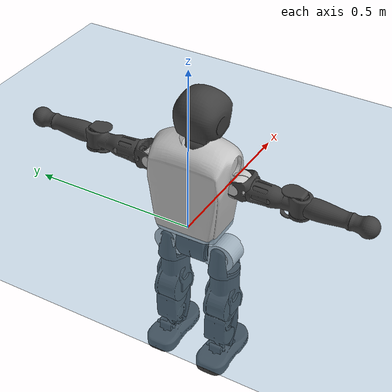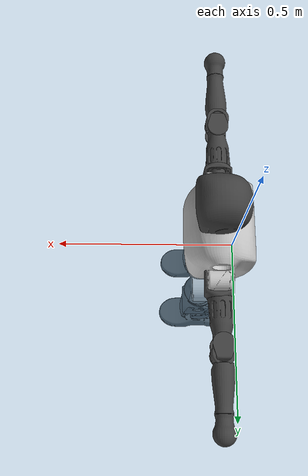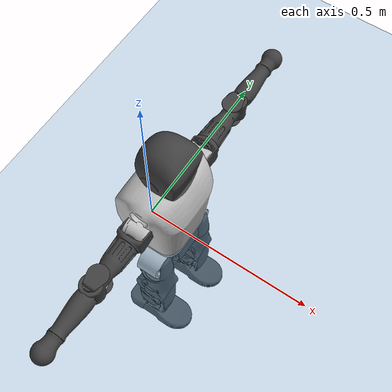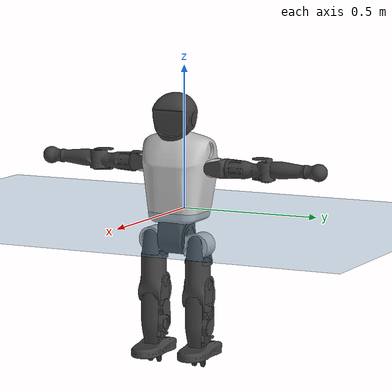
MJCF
<mujoco model="T1">
  <compiler angle="radian" assetdir="assets" balanceinertia="true" inertiafromgeom="false"/>

  <option timestep="0.005" density="1.2" viscosity="2e-05"/>

  <size nkey="1"/>

  <visual>
    <quality shadowsize="8192"/>
    <map shadowclip="0.5"/>
  </visual>

  <default>
    <default class="/">
      <joint armature="0.01" damping="0.01" frictionloss="0.1"/>
      <geom contype="0" conaffinity="0" group="1" solref="-1000 -80"/>
      <site size="0.01 0.005 0.005" group="5"/>
      <general forcelimited="true" biastype="affine" gainprm="25" biasprm="0 -25 -0.6"/>
      <default class="t1">
        <geom rgba="0.25 0.25 0.25 1"/>
        <default class="visual">
          <geom type="mesh" group="2"/>
        </default>
        <default class="collision">
          <geom group="3"/>
        </default>
        <default class="foot">
          <geom size="0.1115 0.05 0.015" type="box" condim="6" group="4" priority="1" solimp="0.015 1 0.015"/>
        </default>
        <default class="reward_collision_sphere">
          <geom group="5" rgba="1 0 0 1"/>
        </default>
      </default>
    </default>
  </default>

  <asset>
    <texture type="skybox" colorspace="auto" name="//unnamed_texture_0" builtin="gradient" rgb1="0.95 0.95 0.95" rgb2="0.95 0.95 0.95" width="100" height="600"/>
    <texture type="2d" colorspace="auto" name="texplane" builtin="checker" rgb1="0.345 0.575 0.748" rgb2="0.345 0.575 0.748" markrgb="1 1 1" width="512" height="512"/>
    <material name="MatPlane" class="/" texture="texplane" texuniform="true" texrepeat="2 2" specular="0.9"/>
    <mesh name="Trunk" class="/" file="Trunk.stl"/>
    <mesh name="H1" class="/" file="H1.stl"/>
    <mesh name="H2" class="/" file="H2.stl"/>
    <mesh name="AL1" class="/" file="AL1.stl"/>
    <mesh name="AL2" class="/" file="AL2.stl"/>
    <mesh name="AL3" class="/" file="AL3.stl"/>
    <mesh name="left_hand_link" class="/" file="left_hand_link.stl"/>
    <mesh name="AR1" class="/" file="AR1.stl"/>
    <mesh name="AR2" class="/" file="AR2.stl"/>
    <mesh name="AR3" class="/" file="AR3.stl"/>
    <mesh name="right_hand_link" class="/" file="right_hand_link.stl"/>
    <mesh name="Waist" class="/" file="Waist.stl"/>
    <mesh name="Hip_Pitch_Left" class="/" file="Hip_Pitch_Left.stl"/>
    <mesh name="Hip_Roll_Left" class="/" file="Hip_Roll_Left.stl"/>
    <mesh name="Hip_Yaw_Left" class="/" file="Hip_Yaw_Left.stl"/>
    <mesh name="Shank_Left" class="/" file="Shank_Left.stl"/>
    <mesh name="Ankle_Cross_Left" class="/" file="Ankle_Cross_Left.stl"/>
    <mesh name="left_foot_link" class="/" file="left_foot_link.stl"/>
    <mesh name="Hip_Pitch_Right" class="/" file="Hip_Pitch_Right.stl"/>
    <mesh name="Hip_Roll_Right" class="/" file="Hip_Roll_Right.stl"/>
    <mesh name="Hip_Yaw_Right" class="/" file="Hip_Yaw_Right.stl"/>
    <mesh name="Shank_Right" class="/" file="Shank_Right.stl"/>
    <mesh name="Ankle_Cross_Right" class="/" file="Ankle_Cross_Right.stl"/>
    <mesh name="right_foot_link" class="/" file="right_foot_link.stl"/>
  </asset>

  <worldbody>
    <geom name="floor" class="/" size="100 100 0.125" type="plane" group="0" material="MatPlane"/>
    <light name="toplight_shadow" class="/" pos="0 0 5" dir="0.0990148 0.0990148 -0.990148" type="directional" ambient="0.04 0.04 0.04" diffuse="0.55 0.55 0.55" specular="0.12 0.12 0.12"/>
    <light name="toplight_fill" class="/" pos="0 0 5" dir="0.0990148 0.0990148 -0.990148" type="directional" castshadow="false" ambient="0.04 0.04 0.04" diffuse="0.3 0.3 0.3" specular="0.08 0.08 0.08"/>
    <body name="trunk" childclass="t1" pos="-0.000720374 0.00436224 -0.00280056" quat="0.999997 -0.00134674 -0.000766146 0.00181243">
      <inertial pos="0.0548858 0.000995046 0.0789527" quat="0.999956 0.00199734 -0.00915877 -0.000718092" mass="7.54039" diaginertia="0.0922725 0.0302217 0.0106872"/>
      <joint name="//unnamed_joint_0" type="free" armature="0" damping="0" frictionloss="0"/>
      <geom name="//unnamed_geom_1" class="visual" rgba="0.76 0.76 0.76 1" mesh="Trunk"/>
      <geom name="//unnamed_geom_2" class="collision" size="0.0649797 0.0866396 0.129959" pos="0.0610665 0 0.0890877" type="box"/>
      <geom name="//unnamed_geom_3" class="reward_collision_sphere" size="0.0996356" pos="0.0610665 0 0.0742397"/>
      <geom name="//unnamed_geom_4" class="reward_collision_sphere" size="0.0129959" pos="0.0610665 0.0713164 0"/>
      <geom name="//unnamed_geom_5" class="reward_collision_sphere" size="0.0129959" pos="0.0610665 -0.0713164 0"/>
      <geom name="//unnamed_geom_6" class="reward_collision_sphere" size="0.0129959" pos="0.0610665 0.0897747 0.133631"/>
      <geom name="//unnamed_geom_7" class="reward_collision_sphere" size="0.0129959" pos="0.0610665 -0.0897747 0.133631"/>
      <site name="imu" pos="-0.0140086 -0.0085735 0.00917524" size="0.00866396"/>
      <camera name="track" pos="0 -1.67803 0" quat="0.707107 0.707107 0 0" mode="trackcom"/>
      <camera name="ego_camera" pos="0.124169 0 0.311807" quat="-0.5 -0.5 0.5 0.5"/>
      <body name="H1" pos="0.0587191 -0.00488132 0.182858" quat="1 -6.72375e-05 -0.000103891 0.000220907">
        <inertial pos="0.0026495 -0.000964018 0.0397297" quat="0.747276 -0.0327718 0.0204232 0.663391" mass="0.282986" diaginertia="0.000274056 9.14622e-05 3.38198e-05"/>
        <joint name="AAHead_yaw" pos="0 0 0" axis="-0.00885209 -0.00546264 0.999946" range="-1.5757 1.6375" armature="0.0102486" damping="0" frictionloss="0.0549037"/>
        <geom name="//unnamed_geom_8" class="visual" mesh="H1"/>
        <body name="H2" pos="-0.00337141 -4.21077e-05 0.0441656" quat="1 -0.000279607 7.20378e-06 -4.60651e-05">
          <inertial pos="0.00882683 -0.00103914 0.0742017" quat="0.988129 0.108311 -0.0760431 -0.0780184" mass="0.420205" diaginertia="0.00234732 0.000849465 0.000380913"/>
          <joint name="Head_pitch" pos="0 0 0" axis="-0.0118841 -0.999926 -0.0026634" range="-1.26546 0.394128" armature="0.0113575" damping="0.0010593" frictionloss="0.0787809"/>
          <geom name="//unnamed_geom_9" class="visual" mesh="H2"/>
          <geom name="//unnamed_geom_10" class="collision" size="0.0693117" pos="0.0101778 0 0.0816637"/>
          <geom name="//unnamed_geom_11" class="reward_collision_sphere" size="0.0779757" pos="0.0203555 0 0.0742397"/>
        </body>
      </body>
      <body name="AL1" pos="0.0591218 0.0929874 0.160645" quat="1 0.000169202 0.000594657 0.000168402">
        <inertial pos="-0.000317971 0.0382588 0.000833867" quat="0.53262 0.481705 -0.494855 0.489279" mass="0.330184" diaginertia="0.00148405 0.000527813 6.17238e-05"/>
        <joint name="Left_Shoulder_Pitch" pos="0 0 0" axis="0.00140179 0.99999 -0.00421212" range="-3.29847 1.23017" armature="0.00828167" damping="0.00330547" frictionloss="0.0763137"/>
        <geom name="//unnamed_geom_12" class="visual" rgba="0.76 0.76 0.76 1" mesh="AL1"/>
        <body name="AL2" pos="0.00232832 0.0411974 9.28196e-05" quat="1 4.22089e-05 0.000109659 0.000174198">
          <inertial pos="0.00586193 0.0326585 -0.00117987" quat="0.487898 0.510858 -0.487254 0.513383" mass="0.10357" diaginertia="0.000429116 0.000144422 3.78643e-05"/>
          <joint name="Left_Shoulder_Roll" pos="0 0 0" axis="-0.999942 0.00484005 -0.00963578" range="-1.58079 1.71398" armature="0.00858291" damping="0" frictionloss="0.0768016"/>
          <geom name="//unnamed_geom_13" class="visual" mesh="AL2"/>
          <body name="AL3" pos="-0.00371797 0.0530175 -0.000537862" quat="0.999999 0.000158255 0.000902093 -0.0011702">
            <inertial pos="0.00594635 0.0735611 0.000598491" quat="0.709058 0.705064 -0.00670187 -0.00877438" mass="0.646808" diaginertia="0.0140919 0.0057164 0.000144491"/>
            <joint name="Left_Elbow_Pitch" pos="0 0 0" axis="-0.00312628 -0.999964 -0.00790581" range="-2.27837 2.27961" armature="0.00925144" damping="0.00129808" frictionloss="0.0767057"/>
            <geom name="//unnamed_geom_14" class="visual" mesh="AL3"/>
            <geom name="//unnamed_geom_15" class="collision" size="0.0259919 0.0649797" pos="0 0.0419508 0" quat="0.707105 0.707108 0 0" type="cylinder"/>
            <geom name="//unnamed_geom_16" class="reward_collision_sphere" size="0.0311903"/>
            <body name="left_hand_link" pos="0.000739188 0.12378 0.00715133" quat="0.999997 0.00113668 0.000781069 -0.00212712">
              <inertial pos="-0.000743731 0.0940162 -0.00162115" quat="0.709184 0.705016 -0.00259168 -0.00193067" mass="0.221256" diaginertia="0.00905222 0.00351291 5.46627e-05"/>
              <joint name="Left_Elbow_Yaw" pos="0 0 0" axis="-0.0122593 -0.00497104 0.999912" range="-2.49113 -0.0165808" armature="0.00765755" damping="0.0199704" frictionloss="0.0855686"/>
              <geom name="//unnamed_geom_17" class="visual" mesh="left_hand_link"/>
              <geom name="//unnamed_geom_18" class="collision" size="0.0259919 0.0758097" pos="0 0.109072 0" quat="0.707105 0.707108 0 0" type="cylinder"/>
              <geom name="//unnamed_geom_19" class="reward_collision_sphere" size="0.0433198"/>
              <geom name="//unnamed_geom_20" class="reward_collision_sphere" size="0.0303239" pos="0 0.0922918 0"/>
              <geom name="//unnamed_geom_21" class="reward_collision_sphere" size="0.0303239" pos="0 0.180388 0"/>
            </body>
          </body>
        </body>
      </body>
      <body name="AR1" pos="0.0576201 -0.0828181 0.164146" quat="0.999999 0.000433407 -0.000951107 6.24368e-05">
        <inertial pos="0.000351256 -0.0335811 -0.00593643" quat="0.49756 0.50525 -0.50276 0.494357" mass="0.346637" diaginertia="0.00149456 0.000582894 6.66129e-05"/>
        <joint name="Right_Shoulder_Pitch" pos="0 0 0" axis="-0.0165865 -0.99962 0.0220374" range="-1.28997 3.2674" armature="0.00915795" damping="0.0104629" frictionloss="0.0726021"/>
        <geom name="//unnamed_geom_22" class="visual" rgba="0.76 0.76 0.76 1" mesh="AR1"/>
        <body name="AR2" pos="-0.000637767 -0.0384601 0.00272876" quat="1 3.81681e-05 -0.000136167 -0.000557421">
          <inertial pos="0.00505638 -0.0314334 0.00146472" quat="0.510952 0.486687 -0.512056 0.489757" mass="0.0970402" diaginertia="0.000395782 0.000127614 3.94477e-05"/>
          <joint name="Right_Shoulder_Roll" pos="0 0 0" axis="-1 4.4179e-07 4.12639e-06" range="-1.73047 1.54233" armature="0.0108371" damping="0.00595085" frictionloss="0.0764772"/>
          <geom name="//unnamed_geom_23" class="visual" mesh="AR2"/>
          <body name="AR3" pos="-0.002263 -0.0463336 -0.00505079" quat="0.999998 -0.000481452 -0.000757634 -0.00157939">
            <inertial pos="-0.00718714 -0.069521 -0.00460333" quat="0.707906 0.706306 5.06031e-05 0.000713058" mass="0.680862" diaginertia="0.0154661 0.00544556 0.000142285"/>
            <joint name="Right_Elbow_Pitch" pos="0 0 0" axis="-9.57075e-05 1 0.00018227" range="-2.31574 2.25914" armature="0.00832831" damping="0" frictionloss="0.0549846"/>
            <geom name="//unnamed_geom_24" class="visual" mesh="AR3"/>
            <geom name="//unnamed_geom_25" class="collision" size="0.0259919 0.0649797" pos="0 -0.0419508 0" quat="0.707105 0.707108 0 0" type="cylinder"/>
            <geom name="//unnamed_geom_26" class="reward_collision_sphere" size="0.0311903"/>
            <body name="right_hand_link" pos="0.00138329 -0.119048 0.00299489" quat="1 0.000309248 0.000153 0.000264156">
              <inertial pos="-0.0004232 -0.090056 -0.00118898" quat="0.705849 0.708346 0.00222573 -0.00422857" mass="0.20447" diaginertia="0.00818629 0.00310611 4.45989e-05"/>
              <joint name="Right_Elbow_Yaw" pos="0 0 0" axis="0.0289994 -0.0163023 0.999446" range="-0.0314268 2.44171" armature="0.00858226" damping="0.000278659" frictionloss="0.0828691"/>
              <geom name="//unnamed_geom_27" class="visual" mesh="right_hand_link"/>
              <geom name="//unnamed_geom_28" class="collision" size="0.0259919 0.0758097" pos="0 -0.109072 0" quat="0.707105 0.707108 0 0" type="cylinder"/>
              <geom name="//unnamed_geom_29" class="reward_collision_sphere" size="0.0433198"/>
              <geom name="//unnamed_geom_30" class="reward_collision_sphere" size="0.0303239" pos="0 -0.0922918 0"/>
              <geom name="//unnamed_geom_31" class="reward_collision_sphere" size="0.0303239" pos="0 -0.180388 0"/>
            </body>
          </body>
        </body>
      </body>
      <body name="Waist" pos="0.0708976 -0.000991027 -0.0880141" quat="0.999995 -0.00266993 0.00156219 -0.000685038">
        <inertial pos="0.00795667 -0.00285311 0.00789745" quat="0.979265 -0.0208099 -0.201399 0.00681426" mass="1.74829" diaginertia="0.0057556 0.00211685 0.00102156"/>
        <joint name="Waist" pos="0 0 0" axis="0.00674266 0.00212951 0.999975" range="-1.57267 1.61157" armature="0.00884372" damping="0.0114736" frictionloss="0.0862501"/>
        <geom name="//unnamed_geom_32" class="visual" mesh="Waist"/>
        <body name="Hip_Pitch_Left" pos="0.00398004 0.0916951 -0.00403935" quat="1 0.000125065 -0.000202857 0.000902632">
          <inertial pos="-0.00463598 -0.00434291 -0.0145236" quat="0.979417 0.201694 0.00221953 0.00757673" mass="0.672186" diaginertia="0.00206547 0.000573956 0.000272946"/>
          <joint name="Left_Hip_Pitch" pos="0 0 0" axis="-0.0169114 0.999851 0.00355533" range="-1.79145 1.52485" armature="0.00830833" damping="0.00869846" frictionloss="0.093745"/>
          <geom name="//unnamed_geom_33" class="visual" rgba="0.76 0.76 0.76 1" mesh="Hip_Pitch_Left"/>
          <body name="Hip_Roll_Left" pos="0.00588107 -0.000458106 -0.00592966" quat="1 -7.48016e-07 -1.23775e-05 -2.12165e-06">
            <inertial pos="0.00018792 0.00665081 -0.0404433" quat="0.706974 -0.00618946 -0.00557012 0.707191" mass="0.259372" diaginertia="0.00208016 0.000701778 0.000109184"/>
            <joint name="Left_Hip_Roll" pos="0 0 0" axis="-1 -0.000148903 0.000236245" stiffness="0.000651064" range="-1.61313 0.190744" armature="0.00954302" damping="0.0409999" frictionloss="0.0731934"/>
            <geom name="//unnamed_geom_34" class="visual" mesh="Hip_Roll_Left"/>
            <geom name="//unnamed_geom_35" class="reward_collision_sphere" size="0.0476518"/>
            <body name="Hip_Yaw_Left" pos="0.00495283 -0.000204084 -0.0596342" quat="1 0.000369169 -0.000251102 0.000309651">
              <inertial pos="-0.00505637 0.000890634 -0.063806" quat="0.695509 -0.0345825 -0.0253917 0.717235" mass="1.4584" diaginertia="0.0291417 0.0114856 0.000631547"/>
              <joint name="Left_Hip_Yaw" pos="0 0 0" axis="-0.00380384 -4.52738e-05 -0.999993" stiffness="0.0219994" range="-0.871341 0.960653" armature="0.00870583" damping="0" frictionloss="0.085156"/>
              <geom name="//unnamed_geom_36" class="visual" mesh="Hip_Yaw_Left"/>
              <geom name="//unnamed_geom_37" class="collision" size="0.0433198 0.0693117" type="cylinder"/>
              <body name="Shank_Left" pos="-0.007974 0.00104765 -0.0889183" quat="1 6.32639e-05 -2.14679e-05 -5.88777e-05">
                <inertial pos="-0.00281863 0.00167574 -0.0912554" quat="0.997718 0.00618115 -0.0227993 0.0632492" mass="1.14662" diaginertia="0.0379202 0.015948 0.000448861"/>
                <joint name="Left_Knee_Pitch" pos="0 0 0" axis="-0.000664011 1 -0.000148826" stiffness="0.00123329" range="-0.00307956 2.37292" armature="0.00759254" damping="0.0158974" frictionloss="0.0793095"/>
                <geom name="//unnamed_geom_38" class="visual" mesh="Shank_Left"/>
                <geom name="//unnamed_geom_39" class="collision" size="0.0433198 0.0649797" pos="0 0 -0.0890877" type="cylinder"/>
                <geom name="//unnamed_geom_40" class="reward_collision_sphere" size="0.0563158"/>
                <body name="Ankle_Cross_Left" pos="-0.00523124 -0.000149484 -0.215186" quat="1 -0.000266227 7.42497e-05 0.000222628">
                  <inertial pos="0.00367408 0.00284453 -0.00683579" quat="0.443583 0.554114 0.545689 0.445439" mass="0.048765" diaginertia="3.20208e-05 1.06833e-05 2.57389e-06"/>
                  <joint name="Left_Ankle_Pitch" pos="0 0 0" axis="-0.00104383 0.999999 0.00022777" stiffness="0.0153063" range="-0.861817 0.360319" armature="0.00570996" damping="0" frictionloss="0.093735"/>
                  <geom name="//unnamed_geom_41" class="visual" mesh="Ankle_Cross_Left"/>
                  <body name="left_foot_link" pos="-0.00154247 0.00220255 -0.010907" quat="0.999993 -0.00289094 -0.00198419 0.00121895">
                    <inertial pos="0.00280363 0.000916532 -0.00922755" quat="0.0107744 0.638748 0.00376615 0.769331" mass="0.415495" diaginertia="0.00272032 0.000964458 0.000462042"/>
                    <joint name="Left_Ankle_Roll" pos="0 0 0" axis="-0.999389 0.00879176 -0.0338252" range="-0.419892 0.403908" armature="0.00834767" damping="0.0223962" frictionloss="0.0777461"/>
                    <geom name="//unnamed_geom_42" class="visual" mesh="left_foot_link"/>
                    <geom name="left_foot" class="foot" size="0.0953062 0.0537605 0.0112176" pos="0.0101778 0 -0.011136"/>
                    <geom name="//unnamed_geom_44" class="reward_collision_sphere" size="0.0450526" pos="0.0101778 0 -0.011136"/>
                    <geom name="//unnamed_geom_45" class="reward_collision_sphere" size="0.0259919" pos="0.0966887 -0.0192974 -0.011136"/>
                    <geom name="//unnamed_geom_46" class="reward_collision_sphere" size="0.0259919" pos="-0.0712443 -0.0192974 -0.011136"/>
                    <site name="left_foot" class="foot" pos="0.0101778 0 -0.011136" size="0.00866396"/>
                  </body>
                </body>
              </body>
            </body>
          </body>
        </body>
        <body name="Hip_Pitch_Right" pos="-0.00352194 -0.0879037 0.00676086" quat="1 -0.000593529 -0.000399402 2.72957e-05">
          <inertial pos="0.00653106 0.0110848 -0.0143085" quat="0.971457 -0.236646 0.0155951 -0.00524585" mass="0.667346" diaginertia="0.0019076 0.000580632 0.000288262"/>
          <joint name="Right_Hip_Pitch" pos="0 0 0" axis="-0.00432392 -0.999982 0.00412154" range="-1.60866 1.83338" armature="0.00832758" damping="0.0350552" frictionloss="0.0893885"/>
          <geom name="//unnamed_geom_47" class="visual" rgba="0.76 0.76 0.76 1" mesh="Hip_Pitch_Right"/>
          <body name="Hip_Roll_Right" pos="0.00130326 0.00263495 -0.00819886" quat="1 9.84699e-06 -0.000480077 -0.000344285">
            <inertial pos="0.00358106 0.000870676 -0.0421255" quat="0.707833 -0.0180415 -0.0234217 0.70576" mass="0.244583" diaginertia="0.00170841 0.000600092 0.000110673"/>
            <joint name="Right_Hip_Roll" pos="0 0 0" axis="-0.999998 -0.00158287 -0.00107871" range="-0.247904 1.59288" armature="0.00820111" damping="0.0157546" frictionloss="0.0770335"/>
            <geom name="//unnamed_geom_48" class="visual" mesh="Hip_Roll_Right"/>
            <geom name="//unnamed_geom_49" class="reward_collision_sphere" size="0.0476518"/>
            <body name="Hip_Yaw_Right" pos="0.00637744 0.000624614 -0.0627909" quat="1 0.000233767 0.000494534 0.000762451">
              <inertial pos="-0.00860985 -0.00131256 -0.067654" quat="0.717895 -0.029369 -0.033785 0.694711" mass="1.34348" diaginertia="0.0251434 0.0100039 0.000519425"/>
              <joint name="Right_Hip_Yaw" pos="0 0 0" axis="0.00348363 -0.00105299 -0.999993" range="-1.01903 0.995347" armature="0.00963546" damping="0" frictionloss="0.0815265"/>
              <geom name="//unnamed_geom_50" class="visual" mesh="Hip_Yaw_Right"/>
              <geom name="//unnamed_geom_51" class="collision" size="0.0433198 0.0693117" type="cylinder"/>
              <body name="Shank_Right" pos="-0.010163 0.000884021 -0.0973289" quat="1 8.35387e-05 0.000512968 0.000186138">
                <inertial pos="-0.0066182 0.00391979 -0.090528" quat="0.998651 -0.00579171 -0.0321748 -0.0403441" mass="1.08023" diaginertia="0.037268 0.0143054 0.000461799"/>
                <joint name="Right_Knee_Pitch" pos="0 0 0" axis="-0.00142768 -0.999947 -0.0102189" stiffness="0.0024682" range="-2.2354 0.008103" armature="0.00790107" damping="0.00813826" frictionloss="0.0764327"/>
                <geom name="//unnamed_geom_52" class="visual" mesh="Shank_Right"/>
                <geom name="//unnamed_geom_53" class="collision" size="0.0433198 0.0649797" pos="0 0 -0.0890877" type="cylinder"/>
                <geom name="//unnamed_geom_54" class="reward_collision_sphere" size="0.0563158"/>
                <body name="Ankle_Cross_Right" pos="0.00314745 0.00155103 -0.209336" quat="1 -0.000160263 -0.000130027 -0.000271018">
                  <inertial pos="-0.00574283 -0.000209154 -0.00588414" quat="0.443842 0.551832 0.55006 0.442628" mass="0.0491935" diaginertia="3.02156e-05 1.10947e-05 2.44085e-06"/>
                  <joint name="Right_Ankle_Pitch" pos="0 0 0" axis="-0.0217364 -0.999722 -0.0091261" stiffness="0.0149591" range="-0.380818 0.92876" armature="0.00877285" damping="0.00516821" frictionloss="0.0847079"/>
                  <geom name="//unnamed_geom_55" class="visual" mesh="Ankle_Cross_Right"/>
                  <body name="right_foot_link" pos="-0.00287096 -0.00435438 -0.0195718" quat="1 -1.09001e-05 -9.01432e-06 2.82954e-06">
                    <inertial pos="-0.000121246 -0.00415657 0.00013488" quat="-0.0110635 0.614058 0.0161788 0.789018" mass="0.486439" diaginertia="0.00331332 0.0010777 0.000581433"/>
                    <joint name="Right_Ankle_Roll" pos="0 0 0" axis="-0.999994 0.00264102 -0.00216723" stiffness="0.00617558" range="-0.368257 0.325478" armature="0.0119647" damping="0.0393846" frictionloss="0.0759485"/>
                    <geom name="//unnamed_geom_56" class="visual" mesh="right_foot_link"/>
                    <geom name="right_foot" class="foot" size="0.0863717 0.050159 0.0109538" pos="0.0101778 0 -0.011136"/>
                    <geom name="//unnamed_geom_58" class="reward_collision_sphere" size="0.0346559"/>
                    <geom name="//unnamed_geom_59" class="reward_collision_sphere" size="0.0259919" pos="0.0101778 0 -0.011136"/>
                    <geom name="//unnamed_geom_60" class="reward_collision_sphere" size="0.0259919" pos="0.0966887 0.0192974 -0.011136"/>
                    <geom name="//unnamed_geom_61" class="reward_collision_sphere" size="0.0259919" pos="-0.0712443 0.0192974 -0.011136"/>
                    <site name="right_foot" class="foot" pos="0.0101778 0 -0.011136" size="0.00866396"/>
                  </body>
                </body>
              </body>
            </body>
          </body>
        </body>
      </body>
    </body>
  </worldbody>

  <contact>
    <pair class="/" geom1="floor" geom2="left_foot" name="//unnamed_contact_0"/>
    <pair class="/" geom1="floor" geom2="right_foot" name="//unnamed_contact_1"/>
  </contact>

  <actuator>
    <general name="AAHead_yaw" class="/" joint="AAHead_yaw" forcerange="-6.15851 6.15851" gainprm="21.619" biasprm="0 -21.619 -0.510834"/>
    <general name="Head_pitch" class="/" joint="Head_pitch" forcerange="-6.30962 6.30962" gainprm="21.619" biasprm="0 -21.619 -0.510834"/>
    <general name="Left_Shoulder_Pitch" class="/" joint="Left_Shoulder_Pitch" forcerange="-19.8265 19.8265" gainprm="21.619" biasprm="0 -21.619 -0.510834"/>
    <general name="Left_Shoulder_Roll" class="/" joint="Left_Shoulder_Roll" forcerange="-18.3134 18.3134" gainprm="21.619" biasprm="0 -21.619 -0.510834"/>
    <general name="Left_Elbow_Pitch" class="/" joint="Left_Elbow_Pitch" forcerange="-14.4897 14.4897" gainprm="21.619" biasprm="0 -21.619 -0.510834"/>
    <general name="Left_Elbow_Yaw" class="/" joint="Left_Elbow_Yaw" forcerange="-15.6419 15.6419" gainprm="21.619" biasprm="0 -21.619 -0.510834"/>
    <general name="Right_Shoulder_Pitch" class="/" joint="Right_Shoulder_Pitch" forcerange="-14.4795 14.4795" gainprm="21.619" biasprm="0 -21.619 -0.510834"/>
    <general name="Right_Shoulder_Roll" class="/" joint="Right_Shoulder_Roll" forcerange="-14.1316 14.1316" gainprm="21.619" biasprm="0 -21.619 -0.510834"/>
    <general name="Right_Elbow_Pitch" class="/" joint="Right_Elbow_Pitch" forcerange="-17.0187 17.0187" gainprm="21.619" biasprm="0 -21.619 -0.510834"/>
    <general name="Right_Elbow_Yaw" class="/" joint="Right_Elbow_Yaw" forcerange="-14.3557 14.3557" gainprm="21.619" biasprm="0 -21.619 -0.510834"/>
    <general name="Waist" class="/" joint="Waist" forcerange="-29.79 29.79" gainprm="21.619" biasprm="0 -21.619 -0.510834"/>
    <general name="Left_Hip_Pitch" class="/" joint="Left_Hip_Pitch" forcerange="-42.4613 42.4613" gainprm="21.619" biasprm="0 -21.619 -0.510834"/>
    <general name="Left_Hip_Roll" class="/" joint="Left_Hip_Roll" forcerange="-26.8379 26.8379" gainprm="21.619" biasprm="0 -21.619 -0.510834"/>
    <general name="Left_Hip_Yaw" class="/" joint="Left_Hip_Yaw" forcerange="-26.9818 26.9818" gainprm="21.619" biasprm="0 -21.619 -0.510834"/>
    <general name="Left_Knee_Pitch" class="/" joint="Left_Knee_Pitch" forcerange="-50.7668 50.7668" gainprm="21.619" biasprm="0 -21.619 -0.510834"/>
    <general name="Left_Ankle_Pitch" class="/" joint="Left_Ankle_Pitch" forcerange="-17.577 17.577" gainprm="21.619" biasprm="0 -21.619 -0.510834"/>
    <general name="Left_Ankle_Roll" class="/" joint="Left_Ankle_Roll" forcerange="-13.6288 13.6288" gainprm="21.619" biasprm="0 -21.619 -0.510834"/>
    <general name="Right_Hip_Pitch" class="/" joint="Right_Hip_Pitch" forcerange="-31.9923 31.9923" gainprm="21.619" biasprm="0 -21.619 -0.510834"/>
    <general name="Right_Hip_Roll" class="/" joint="Right_Hip_Roll" forcerange="-19.3029 19.3029" gainprm="21.619" biasprm="0 -21.619 -0.510834"/>
    <general name="Right_Hip_Yaw" class="/" joint="Right_Hip_Yaw" forcerange="-26.1682 26.1682" gainprm="21.619" biasprm="0 -21.619 -0.510834"/>
    <general name="Right_Knee_Pitch" class="/" joint="Right_Knee_Pitch" forcerange="-50.7548 50.7548" gainprm="21.619" biasprm="0 -21.619 -0.510834"/>
    <general name="Right_Ankle_Pitch" class="/" joint="Right_Ankle_Pitch" forcerange="-21.6353 21.6353" gainprm="21.619" biasprm="0 -21.619 -0.510834"/>
    <general name="Right_Ankle_Roll" class="/" joint="Right_Ankle_Roll" forcerange="-11.2786 11.2786" gainprm="21.619" biasprm="0 -21.619 -0.510834"/>
  </actuator>

  <sensor>
    <gyro site="imu" name="imu_angular_velocity"/>
    <velocimeter site="imu" name="imu_linear_velocity"/>
    <framelinvel objtype="site" objname="left_foot" name="left_foot_global_linear_velocity"/>
    <framelinvel objtype="site" objname="right_foot" name="right_foot_global_linear_velocity"/>
  </sensor>

  <keyframe>
    <key name="home" qpos="0 0 0.6385 1 0 0 0 0 0 0 1.4 0 -0.4 0 -1.4 0 0.4 0 -0.4 0 0 0.8 -0.4 0 0.4 0 0 -0.8 0.4 0"/>
  </keyframe>
</mujoco>
